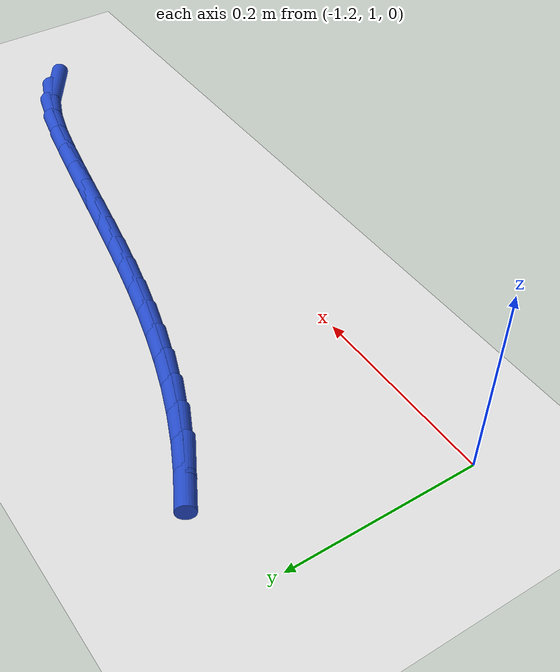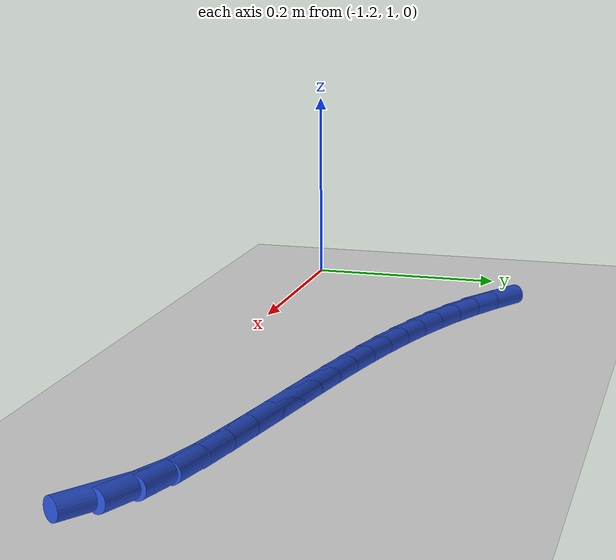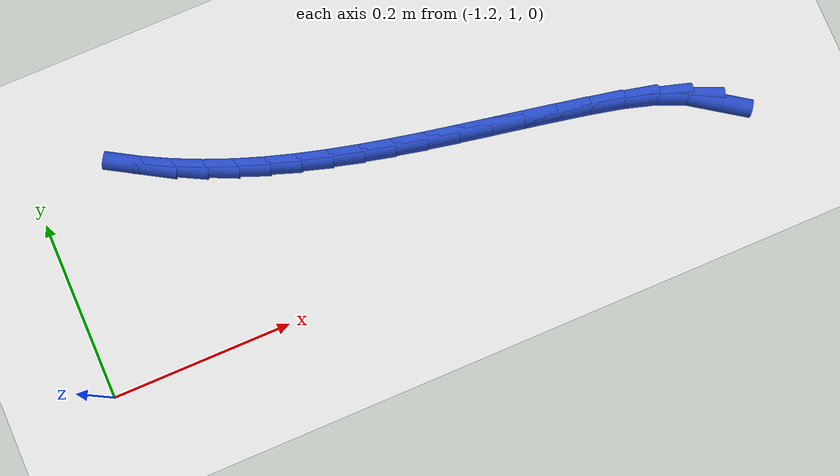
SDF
<sdf version="1.6">
 <world name="default">
  <model name="ground_plane">
   <static>1</static>
   <link name="link">
    <collision name="collision">
     <geometry><plane><normal>0 0 1</normal><size>100 100</size></plane></geometry>
     <surface><friction><ode><mu>100</mu><mu2>50</mu2></ode></friction></surface>
    </collision>
    <visual name="visual">
     <cast_shadows>0</cast_shadows>
     <geometry><plane><normal>0 0 1</normal><size>100 100</size></plane></geometry>
     <material>
      <script><uri>file://media/materials/scripts/gazebo.material</uri><name>Gazebo/WhiteGlow</name></script>
     </material>
    </visual>
   </link>
  </model>
  <model name="line">
   <link name="link_36">
    <pose>-0.48592014714834825 1.0424925964372902 0.01 0 1.57 -0.5970859751958797</pose>
    <collision name="collision">
     <geometry><cylinder><radius>0.01</radius><length>0.08</length></cylinder></geometry>
    </collision>
    <visual name="visual">
     <material>
      <script><name>Gazebo/Blue</name><uri>file://media/materials/scripts/gazebo.material</uri></script>
     </material>
     <geometry><cylinder><radius>0.01</radius><length>0.08</length></cylinder></geometry>
    </visual>
   </link>
   <link name="link_37">
    <pose>-0.5112049766916569 1.059682927594205 0.01 0 1.57 -0.40216599644453177</pose>
    <collision name="collision">
     <geometry><cylinder><radius>0.01</radius><length>0.08</length></cylinder></geometry>
    </collision>
    <visual name="visual">
     <material>
      <script><name>Gazebo/Blue</name><uri>file://media/materials/scripts/gazebo.material</uri></script>
     </material>
     <geometry><cylinder><radius>0.01</radius><length>0.08</length></cylinder></geometry>
    </visual>
   </link>
   <link name="link_38">
    <pose>-0.5420901935219287 1.072819915663861 0.01 0 1.57 -0.284102088188988</pose>
    <collision name="collision">
     <geometry><cylinder><radius>0.01</radius><length>0.08</length></cylinder></geometry>
    </collision>
    <visual name="visual">
     <material>
      <script><name>Gazebo/Blue</name><uri>file://media/materials/scripts/gazebo.material</uri></script>
     </material>
     <geometry><cylinder><radius>0.01</radius><length>0.08</length></cylinder></geometry>
    </visual>
   </link>
   <link name="link_39">
    <pose>-0.5767841359382735 1.0829505772163373 0.01 0 1.57 -0.2190154626607884</pose>
    <collision name="collision">
     <geometry><cylinder><radius>0.01</radius><length>0.08</length></cylinder></geometry>
    </collision>
    <visual name="visual">
     <material>
      <script><name>Gazebo/Blue</name><uri>file://media/materials/scripts/gazebo.material</uri></script>
     </material>
     <geometry><cylinder><radius>0.01</radius><length>0.08</length></cylinder></geometry>
    </visual>
   </link>
   <link name="link_40">
    <pose>-0.6134951422398011 1.0911219288217127 0.01 0 1.57 -0.19302854937290198</pose>
    <collision name="collision">
     <geometry><cylinder><radius>0.01</radius><length>0.08</length></cylinder></geometry>
    </collision>
    <visual name="visual">
     <material>
      <script><name>Gazebo/Blue</name><uri>file://media/materials/scripts/gazebo.material</uri></script>
     </material>
     <geometry><cylinder><radius>0.01</radius><length>0.08</length></cylinder></geometry>
    </visual>
   </link>
   <link name="link_41">
    <pose>-0.6504887639221568 1.0983527851125534 0.01 0 1.57 -0.185511469880514</pose>
    <collision name="collision">
     <geometry><cylinder><radius>0.01</radius><length>0.08</length></cylinder></geometry>
    </collision>
    <visual name="visual">
     <material>
      <script><name>Gazebo/Blue</name><uri>file://media/materials/scripts/gazebo.material</uri></script>
     </material>
     <geometry><cylinder><radius>0.01</radius><length>0.08</length></cylinder></geometry>
    </visual>
   </link>
   <link name="link_42">
    <pose>-0.6869695435538838 1.1051991065345077 0.01 0 1.57 -0.18267262407618715</pose>
    <collision name="collision">
     <geometry><cylinder><radius>0.01</radius><length>0.08</length></cylinder></geometry>
    </collision>
    <visual name="visual">
     <material>
      <script><name>Gazebo/Blue</name><uri>file://media/materials/scripts/gazebo.material</uri></script>
     </material>
     <geometry><cylinder><radius>0.01</radius><length>0.08</length></cylinder></geometry>
    </visual>
   </link>
   <link name="link_43">
    <pose>-0.7229097612092996 1.111838414877889 0.01 0 1.57 -0.1843174612936856</pose>
    <collision name="collision">
     <geometry><cylinder><radius>0.01</radius><length>0.08</length></cylinder></geometry>
    </collision>
    <visual name="visual">
     <material>
      <script><name>Gazebo/Blue</name><uri>file://media/materials/scripts/gazebo.material</uri></script>
     </material>
     <geometry><cylinder><radius>0.01</radius><length>0.08</length></cylinder></geometry>
    </visual>
   </link>
   <link name="link_44">
    <pose>-0.7583042235322829 1.1184371279754313 0.01 0 1.57 -0.19064855812285278</pose>
    <collision name="collision">
     <geometry><cylinder><radius>0.01</radius><length>0.08</length></cylinder></geometry>
    </collision>
    <visual name="visual">
     <material>
      <script><name>Gazebo/Blue</name><uri>file://media/materials/scripts/gazebo.material</uri></script>
     </material>
     <geometry><cylinder><radius>0.01</radius><length>0.08</length></cylinder></geometry>
    </visual>
   </link>
   <link name="link_45">
    <pose>-0.7931477371667132 1.1251616636598702 0.01 0 1.57 -0.2018589244967569</pose>
    <collision name="collision">
     <geometry><cylinder><radius>0.01</radius><length>0.08</length></cylinder></geometry>
    </collision>
    <visual name="visual">
     <material>
      <script><name>Gazebo/Blue</name><uri>file://media/materials/scripts/gazebo.material</uri></script>
     </material>
     <geometry><cylinder><radius>0.01</radius><length>0.08</length></cylinder></geometry>
    </visual>
   </link>
   <link name="link_46">
    <pose>-0.82743510875647 1.1321784397639407 0.01 0 1.57 -0.2181252372307707</pose>
    <collision name="collision">
     <geometry><cylinder><radius>0.01</radius><length>0.08</length></cylinder></geometry>
    </collision>
    <visual name="visual">
     <material>
      <script><name>Gazebo/Blue</name><uri>file://media/materials/scripts/gazebo.material</uri></script>
     </material>
     <geometry><cylinder><radius>0.01</radius><length>0.08</length></cylinder></geometry>
    </visual>
   </link>
   <link name="link_47">
    <pose>-0.8611611449454323 1.139653874120378 0.01 0 1.57 -0.23959663805163278</pose>
    <collision name="collision">
     <geometry><cylinder><radius>0.01</radius><length>0.08</length></cylinder></geometry>
    </collision>
    <visual name="visual">
     <material>
      <script><name>Gazebo/Blue</name><uri>file://media/materials/scripts/gazebo.material</uri></script>
     </material>
     <geometry><cylinder><radius>0.01</radius><length>0.08</length></cylinder></geometry>
    </visual>
   </link>
   <link name="link_48">
    <pose>-0.8943206523774799 1.1477543845619171 0.01 0 1.57 -0.2663784753518847</pose>
    <collision name="collision">
     <geometry><cylinder><radius>0.01</radius><length>0.08</length></cylinder></geometry>
    </collision>
    <visual name="visual">
     <material>
      <script><name>Gazebo/Blue</name><uri>file://media/materials/scripts/gazebo.material</uri></script>
     </material>
     <geometry><cylinder><radius>0.01</radius><length>0.08</length></cylinder></geometry>
    </visual>
   </link>
   <link name="link_49">
    <pose>-0.926908437696492 1.1566463889212932 0.01 0 1.57 -0.2985108515455796</pose>
    <collision name="collision">
     <geometry><cylinder><radius>0.01</radius><length>0.08</length></cylinder></geometry>
    </collision>
    <visual name="visual">
     <material>
      <script><name>Gazebo/Blue</name><uri>file://media/materials/scripts/gazebo.material</uri></script>
     </material>
     <geometry><cylinder><radius>0.01</radius><length>0.08</length></cylinder></geometry>
    </visual>
   </link>
   <link name="link_50">
    <pose>-0.9589193075463476 1.166496305031241 0.01 0 1.57 -0.3359427284896135</pose>
    <collision name="collision">
     <geometry><cylinder><radius>0.01</radius><length>0.08</length></cylinder></geometry>
    </collision>
    <visual name="visual">
     <material>
      <script><name>Gazebo/Blue</name><uri>file://media/materials/scripts/gazebo.material</uri></script>
     </material>
     <geometry><cylinder><radius>0.01</radius><length>0.08</length></cylinder></geometry>
    </visual>
   </link>
   <link name="link_51">
    <pose>-0.9903480685709265 1.1774705507244958 0.01 0 1.57 -0.378503707828925</pose>
    <collision name="collision">
     <geometry><cylinder><radius>0.01</radius><length>0.08</length></cylinder></geometry>
    </collision>
    <visual name="visual">
     <material>
      <script><name>Gazebo/Blue</name><uri>file://media/materials/scripts/gazebo.material</uri></script>
     </material>
     <geometry><cylinder><radius>0.01</radius><length>0.08</length></cylinder></geometry>
    </visual>
   </link>
   <link name="link_52">
    <pose>-1.0211895274141078 1.189735543833793 0.01 0 1.57 -0.425877337422373</pose>
    <collision name="collision">
     <geometry><cylinder><radius>0.01</radius><length>0.08</length></cylinder></geometry>
    </collision>
    <visual name="visual">
     <material>
      <script><name>Gazebo/Blue</name><uri>file://media/materials/scripts/gazebo.material</uri></script>
     </material>
     <geometry><cylinder><radius>0.01</radius><length>0.08</length></cylinder></geometry>
    </visual>
   </link>
   <link name="link_53">
    <pose>-1.051438490719771 1.2034577021918675 0.01 0 1.57 -0.4775815000869753</pose>
    <collision name="collision">
     <geometry><cylinder><radius>0.01</radius><length>0.08</length></cylinder></geometry>
    </collision>
    <visual name="visual">
     <material>
      <script><name>Gazebo/Blue</name><uri>file://media/materials/scripts/gazebo.material</uri></script>
     </material>
     <geometry><cylinder><radius>0.01</radius><length>0.08</length></cylinder></geometry>
    </visual>
   </link>
   <link name="link_54">
    <pose>-1.0810897651317952 1.2188034436314545 0.01 0 1.57 -0.5329623754756757</pose>
    <collision name="collision">
     <geometry><cylinder><radius>0.01</radius><length>0.08</length></cylinder></geometry>
    </collision>
    <visual name="visual">
     <material>
      <script><name>Gazebo/Blue</name><uri>file://media/materials/scripts/gazebo.material</uri></script>
     </material>
     <geometry><cylinder><radius>0.01</radius><length>0.08</length></cylinder></geometry>
    </visual>
   </link>
  </model>
 </world>
</sdf>
